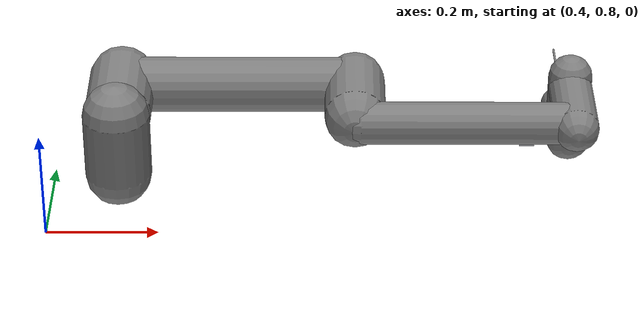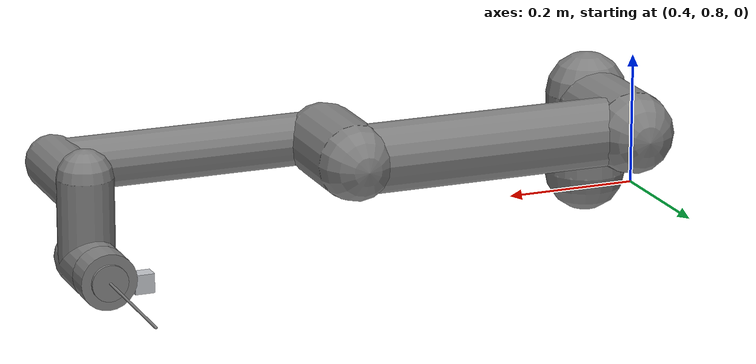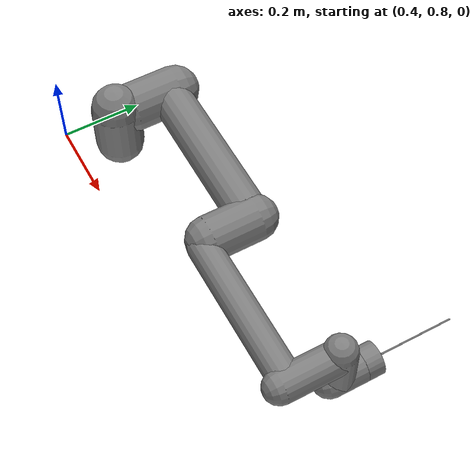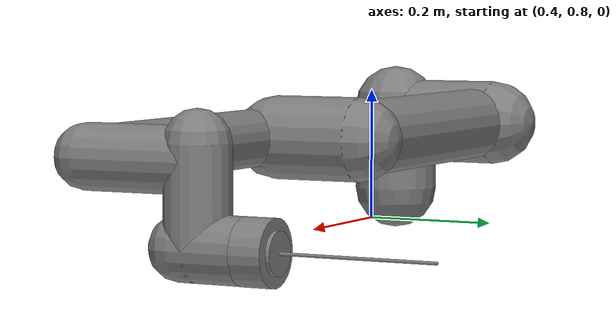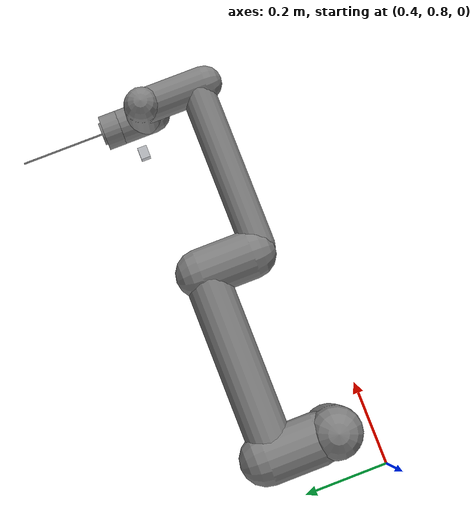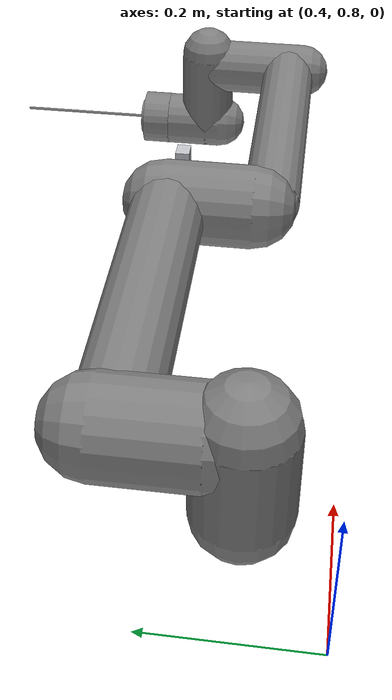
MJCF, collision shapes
<mujoco model="MuJoCo Model">
  <compiler angle="radian" meshdir="meshes/"/>

  <option integrator="implicitfast"/>

  <size nkey="1"/>

  <default>
    <default class="leak/main">
      <default class="leak/ur5e">
        <material shininess="0.25"/>
        <joint range="-6.28319 6.28319" armature="0.1" axis="0 1 0"/>
        <site size="0.001 0.005 0.005" group="4" rgba="0.5 0.5 0.5 0.3"/>
        <general ctrlrange="-6.2831 6.2831" forcerange="-150 150" biastype="affine" gainprm="2000" biasprm="0 -2000 -400"/>
        <default class="leak/size3">
          <default class="leak/size3_limited">
            <joint range="-3.1415 3.1415"/>
            <general ctrlrange="-3.1415 3.1415"/>
          </default>
        </default>
        <default class="leak/size1">
          <general forcerange="-28 28" gainprm="500" biasprm="0 -500 -100"/>
        </default>
        <default class="leak/visual">
          <geom type="mesh" contype="0" conaffinity="0" group="2"/>
        </default>
        <default class="leak/collision">
          <geom type="capsule" group="3"/>
          <default class="leak/eef_collision">
            <geom type="cylinder"/>
          </default>
        </default>
      </default>
    </default>
  </default>

  <asset>
    <material name="leak/black" class="leak/ur5e" rgba="0.033 0.033 0.033 1"/>
    <material name="leak/jointgray" class="leak/ur5e" rgba="0.278 0.278 0.278 1"/>
    <material name="leak/linkgray" class="leak/ur5e" rgba="0.82 0.82 0.82 1"/>
    <material name="leak/urblue" class="leak/ur5e" rgba="0.49 0.678 0.8 1"/>
    <material name="leak/mat_leak_probe" rgba="0.6 0.62 0.65 1"/>
    <material name="leak/mat_leak_cam_housing" rgba="0.75 0.76 0.78 1"/>
    <mesh name="leak/base_0" file="robot/base_0.obj"/>
    <mesh name="leak/base_1" file="robot/base_1.obj"/>
    <mesh name="leak/shoulder_0" file="robot/shoulder_0.obj"/>
    <mesh name="leak/shoulder_1" file="robot/shoulder_1.obj"/>
    <mesh name="leak/shoulder_2" file="robot/shoulder_2.obj"/>
    <mesh name="leak/upperarm_0" file="robot/upperarm_0.obj"/>
    <mesh name="leak/upperarm_1" file="robot/upperarm_1.obj"/>
    <mesh name="leak/upperarm_2" file="robot/upperarm_2.obj"/>
    <mesh name="leak/upperarm_3" file="robot/upperarm_3.obj"/>
    <mesh name="leak/forearm_0" file="robot/forearm_0.obj"/>
    <mesh name="leak/forearm_1" file="robot/forearm_1.obj"/>
    <mesh name="leak/forearm_2" file="robot/forearm_2.obj"/>
    <mesh name="leak/forearm_3" file="robot/forearm_3.obj"/>
    <mesh name="leak/wrist1_0" file="robot/wrist1_0.obj"/>
    <mesh name="leak/wrist1_1" file="robot/wrist1_1.obj"/>
    <mesh name="leak/wrist1_2" file="robot/wrist1_2.obj"/>
    <mesh name="leak/wrist2_0" file="robot/wrist2_0.obj"/>
    <mesh name="leak/wrist2_1" file="robot/wrist2_1.obj"/>
    <mesh name="leak/wrist2_2" file="robot/wrist2_2.obj"/>
    <mesh name="leak/wrist3" file="robot/wrist3.obj"/>
    <mesh name="leak/leak_probe_visual" file="parts/probe.stl"/>
  </asset>

  <worldbody>
    <light name="leak/spotlight" target="leak/wrist_2_link" pos="0.525 1.9 2" diffuse="0.18 0.18 0.18" specular="0 0 0" mode="targetbodycom"/>
    <body name="leak/base" childclass="leak/ur5e" pos="0.525 0.9 0">
      <inertial pos="0 0 0" mass="4" diaginertia="0.00443333 0.00443333 0.0072"/>
      <geom class="leak/visual" material="leak/black" mesh="leak/base_0"/>
      <geom class="leak/visual" material="leak/jointgray" mesh="leak/base_1"/>
      <body name="leak/shoulder_link" pos="0 0 0.163">
        <inertial pos="0 0 0" mass="3.7" diaginertia="0.0102675 0.0102675 0.00666"/>
        <joint name="leak/shoulder_pan_joint" class="leak/size3" axis="0 0 1"/>
        <geom class="leak/visual" material="leak/urblue" mesh="leak/shoulder_0"/>
        <geom class="leak/visual" material="leak/black" mesh="leak/shoulder_1"/>
        <geom class="leak/visual" material="leak/jointgray" mesh="leak/shoulder_2"/>
        <geom class="leak/collision" size="0.06 0.06" pos="0 0 -0.04"/>
        <body name="leak/upper_arm_link" pos="0 0.138 0" quat="0.707107 0 0.707107 0">
          <inertial pos="0 0 0.2125" mass="8.393" diaginertia="0.133886 0.133886 0.0151074"/>
          <joint name="leak/shoulder_lift_joint" class="leak/size3"/>
          <geom class="leak/visual" material="leak/linkgray" mesh="leak/upperarm_0"/>
          <geom class="leak/visual" material="leak/black" mesh="leak/upperarm_1"/>
          <geom class="leak/visual" material="leak/jointgray" mesh="leak/upperarm_2"/>
          <geom class="leak/visual" material="leak/urblue" mesh="leak/upperarm_3"/>
          <geom class="leak/collision" size="0.06 0.06" pos="0 -0.04 0" quat="0.707107 0.707107 0 0"/>
          <geom class="leak/collision" size="0.05 0.2" pos="0 0 0.2"/>
          <body name="leak/forearm_link" pos="0 -0.131 0.425">
            <inertial pos="0 0 0.196" mass="2.275" diaginertia="0.0311796 0.0311796 0.004095"/>
            <joint name="leak/elbow_joint" class="leak/size3_limited"/>
            <geom class="leak/visual" material="leak/urblue" mesh="leak/forearm_0"/>
            <geom class="leak/visual" material="leak/linkgray" mesh="leak/forearm_1"/>
            <geom class="leak/visual" material="leak/black" mesh="leak/forearm_2"/>
            <geom class="leak/visual" material="leak/jointgray" mesh="leak/forearm_3"/>
            <geom class="leak/collision" size="0.055 0.06" pos="0 0.08 0" quat="0.707107 0.707107 0 0"/>
            <geom class="leak/collision" size="0.038 0.19" pos="0 0 0.2"/>
            <body name="leak/wrist_1_link" pos="0 0 0.392" quat="0.707107 0 0.707107 0">
              <inertial pos="0 0.127 0" mass="1.219" diaginertia="0.0025599 0.0025599 0.0021942"/>
              <joint name="leak/wrist_1_joint" class="leak/size1"/>
              <geom class="leak/visual" material="leak/black" mesh="leak/wrist1_0"/>
              <geom class="leak/visual" material="leak/urblue" mesh="leak/wrist1_1"/>
              <geom class="leak/visual" material="leak/jointgray" mesh="leak/wrist1_2"/>
              <geom class="leak/collision" size="0.04 0.07" pos="0 0.05 0" quat="0.707107 0.707107 0 0"/>
              <body name="leak/wrist_2_link" pos="0 0.127 0">
                <inertial pos="0 0 0.1" mass="1.219" diaginertia="0.0025599 0.0025599 0.0021942"/>
                <joint name="leak/wrist_2_joint" class="leak/size1" axis="0 0 1"/>
                <geom class="leak/visual" material="leak/black" mesh="leak/wrist2_0"/>
                <geom class="leak/visual" material="leak/urblue" mesh="leak/wrist2_1"/>
                <geom class="leak/visual" material="leak/jointgray" mesh="leak/wrist2_2"/>
                <geom class="leak/collision" size="0.04 0.06" pos="0 0 0.04"/>
                <geom class="leak/collision" size="0.04 0.04" pos="0 0.02 0.1" quat="0.707107 0.707107 0 0"/>
                <body name="leak/wrist_3_link" pos="0 0 0.1">
                  <inertial pos="0 0.0771683 0" quat="0.707107 0 0 0.707107" mass="0.1889" diaginertia="0.000132134 9.90863e-05 9.90863e-05"/>
                  <joint name="leak/wrist_3_joint" class="leak/size1"/>
                  <geom class="leak/visual" material="leak/linkgray" mesh="leak/wrist3"/>
                  <geom class="leak/eef_collision" size="0.04 0.02" pos="0 0.08 0" quat="0.707107 0.707107 0 0"/>
                  <geom name="leak/leak_cam_housing" size="0.014 0.014 0.011" pos="0.07 0.03 0.03" quat="0.707107 0.707107 0 0" type="box" contype="0" conaffinity="0" group="2" material="leak/mat_leak_cam_housing"/>
                  <site name="leak/attachment_site" quat="-0.707107 0.707107 0 0" pos="0 0.1 0"/>
                  <camera name="leak/leak_cam" quat="0.707107 0.707107 0 0" pos="0.07 0.05 0.03" fovy="55"/>
                  <body name="leak/probe_tool" pos="0 0.1 0" quat="-0.707107 0.707107 0 0">
                    <geom name="leak/probe_visual" type="mesh" contype="0" conaffinity="0" group="2" material="leak/mat_leak_probe" mesh="leak/leak_probe_visual"/>
                    <geom name="leak/probe_collision_0" size="0.002 0.0975" pos="0 0 0.0975" type="capsule" group="3"/>
                    <geom name="leak/probe_mount_collision" size="0.026 0.003" pos="0 0 0.002" type="cylinder" group="3"/>
                    <site name="leak/probe_tip" group="5" pos="0 0 0.195"/>
                  </body>
                </body>
              </body>
            </body>
          </body>
        </body>
      </body>
    </body>
  </worldbody>

  <actuator>
    <general name="leak/shoulder_pan" class="leak/size3" joint="leak/shoulder_pan_joint"/>
    <general name="leak/shoulder_lift" class="leak/size3" joint="leak/shoulder_lift_joint"/>
    <general name="leak/elbow" class="leak/size3_limited" joint="leak/elbow_joint"/>
    <general name="leak/wrist_1" class="leak/size1" joint="leak/wrist_1_joint"/>
    <general name="leak/wrist_2" class="leak/size1" joint="leak/wrist_2_joint"/>
    <general name="leak/wrist_3" class="leak/size1" joint="leak/wrist_3_joint"/>
  </actuator>

  <keyframe>
    <key name="leak/home" qpos="-1.5708 -1.5708 1.5708 -1.5708 -1.5708 0" ctrl="-1.5708 -1.5708 1.5708 -1.5708 -1.5708 0"/>
  </keyframe>
</mujoco>
